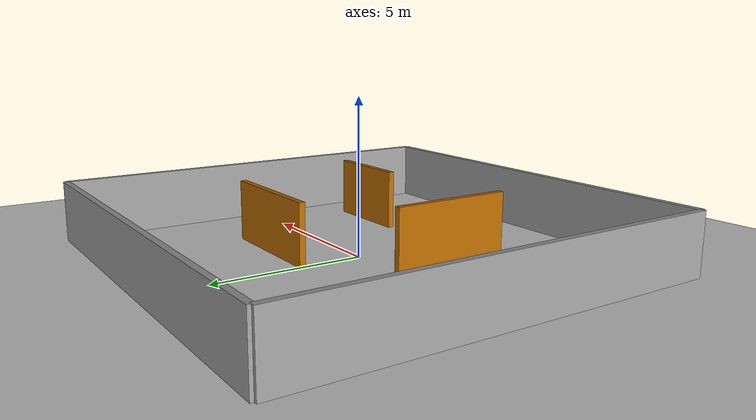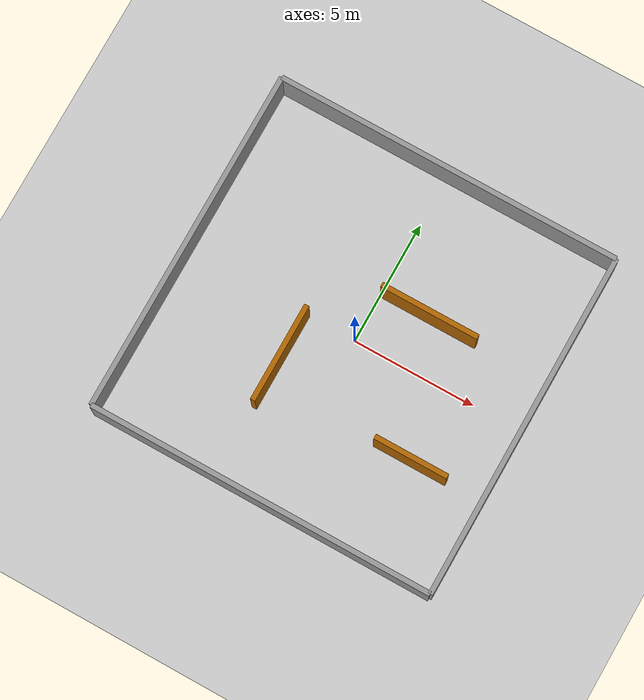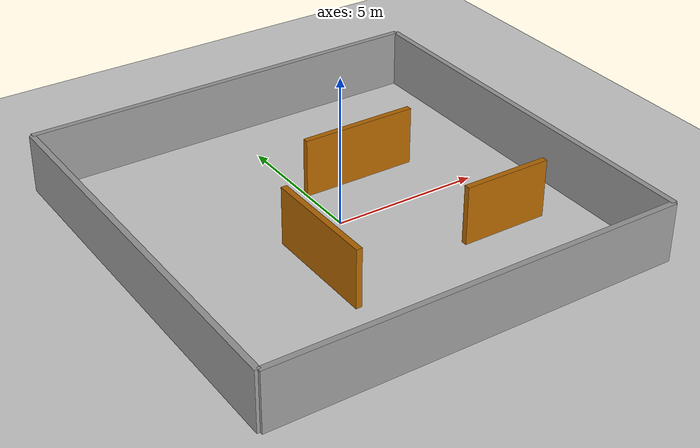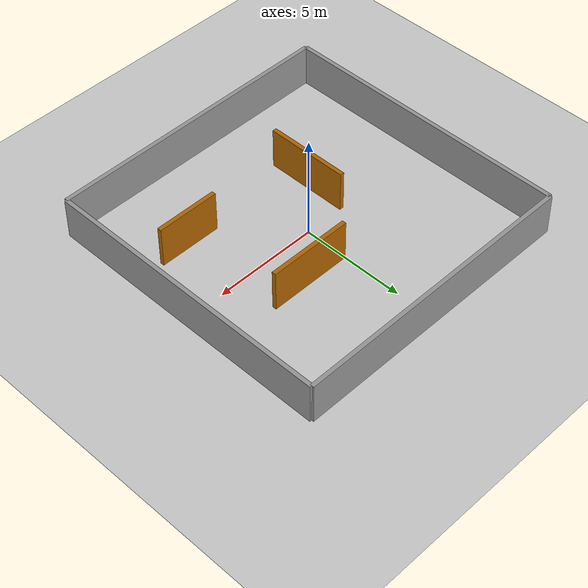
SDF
<?xml version="1.0" ?>
<sdf version="1.6">
  <world name="world_navigasi">

    <include>
      <uri>model://sun</uri>
    </include>
    <include>
      <uri>model://ground_plane</uri>
    </include>

    <physics type="ode">
      <real_time_update_rate>1000.0</real_time_update_rate>
      <max_step_size>0.001</max_step_size>
    </physics>

    <!-- Labirin sederhana -->
    <!-- Dinding luar -->
    <model name="dinding_utara">
      <pose>0 7 1 0 0 0</pose>
      <static>true</static>
      <link name="link">
        <collision name="collision"><geometry><box><size>14 0.2 2</size></box></geometry></collision>
        <visual name="visual">
          <geometry><box><size>14 0.2 2</size></box></geometry>
          <material><ambient>0.4 0.4 0.4 1</ambient><diffuse>0.6 0.6 0.6 1</diffuse></material>
        </visual>
      </link>
    </model>

    <model name="dinding_selatan">
      <pose>0 -7 1 0 0 0</pose>
      <static>true</static>
      <link name="link">
        <collision name="collision"><geometry><box><size>14 0.2 2</size></box></geometry></collision>
        <visual name="visual">
          <geometry><box><size>14 0.2 2</size></box></geometry>
          <material><ambient>0.4 0.4 0.4 1</ambient><diffuse>0.6 0.6 0.6 1</diffuse></material>
        </visual>
      </link>
    </model>

    <model name="dinding_timur">
      <pose>7 0 1 0 0 1.5707</pose>
      <static>true</static>
      <link name="link">
        <collision name="collision"><geometry><box><size>14 0.2 2</size></box></geometry></collision>
        <visual name="visual">
          <geometry><box><size>14 0.2 2</size></box></geometry>
          <material><ambient>0.4 0.4 0.4 1</ambient><diffuse>0.6 0.6 0.6 1</diffuse></material>
        </visual>
      </link>
    </model>

    <model name="dinding_barat">
      <pose>-7 0 1 0 0 1.5707</pose>
      <static>true</static>
      <link name="link">
        <collision name="collision"><geometry><box><size>14 0.2 2</size></box></geometry></collision>
        <visual name="visual">
          <geometry><box><size>14 0.2 2</size></box></geometry>
          <material><ambient>0.4 0.4 0.4 1</ambient><diffuse>0.6 0.6 0.6 1</diffuse></material>
        </visual>
      </link>
    </model>

    <!-- Rintangan dalam -->
    <model name="rintangan_tengah_1">
      <pose>2 2 1 0 0 0</pose>
      <static>true</static>
      <link name="link">
        <collision name="collision"><geometry><box><size>4 0.2 2</size></box></geometry></collision>
        <visual name="visual">
          <geometry><box><size>4 0.2 2</size></box></geometry>
          <material><ambient>0.6 0.3 0 1</ambient><diffuse>0.7 0.4 0 1</diffuse></material>
        </visual>
      </link>
    </model>

    <model name="rintangan_tengah_2">
      <pose>-2 -2 1 0 0 1.5707</pose>
      <static>true</static>
      <link name="link">
        <collision name="collision"><geometry><box><size>4 0.2 2</size></box></geometry></collision>
        <visual name="visual">
          <geometry><box><size>4 0.2 2</size></box></geometry>
          <material><ambient>0.6 0.3 0 1</ambient><diffuse>0.7 0.4 0 1</diffuse></material>
        </visual>
      </link>
    </model>

    <model name="rintangan_kanan">
      <pose>4 -3 1 0 0 0</pose>
      <static>true</static>
      <link name="link">
        <collision name="collision"><geometry><box><size>3 0.2 2</size></box></geometry></collision>
        <visual name="visual">
          <geometry><box><size>3 0.2 2</size></box></geometry>
          <material><ambient>0.6 0.3 0 1</ambient><diffuse>0.7 0.4 0 1</diffuse></material>
        </visual>
      </link>
    </model>

    <gui fullscreen="0">
      <camera name="user_camera">
        <pose>0 0 20 0 1.57 0</pose>
        <view_controller>orbit</view_controller>
      </camera>
    </gui>

  </world>
</sdf>
